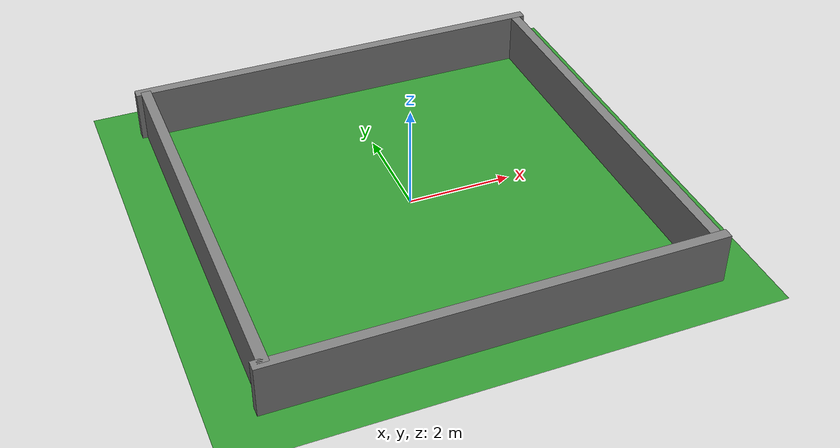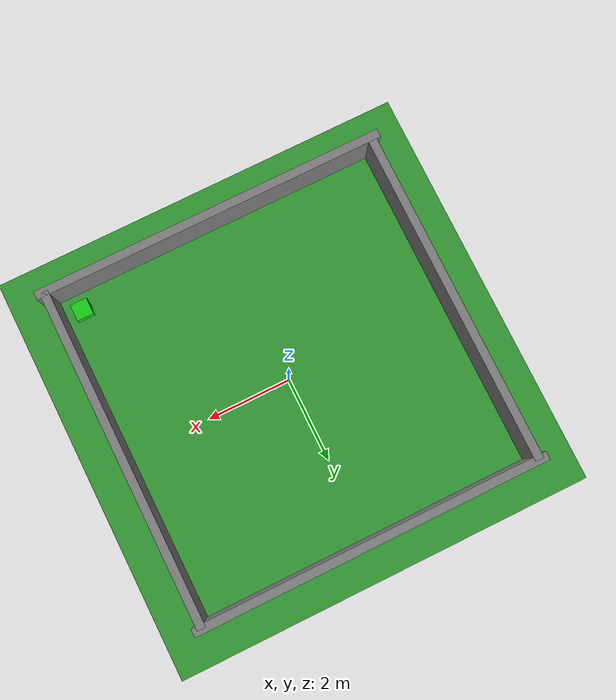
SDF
<?xml version="1.0" ?>
<sdf version="1.8">
  <world name="docking_test_world">

    <!-- 必須プラグイン -->
    <plugin filename="gz-sim-physics-system"
            name="gz::sim::systems::Physics">
    </plugin>
    <plugin filename="gz-sim-user-commands-system"
            name="gz::sim::systems::UserCommands">
    </plugin>
    <plugin filename="gz-sim-scene-broadcaster-system"
            name="gz::sim::systems::SceneBroadcaster">
    </plugin>
    <plugin filename="gz-sim-sensors-system"
            name="gz::sim::systems::Sensors">
      <render_engine>ogre2</render_engine>
    </plugin>

    <!-- 太陽光 -->
    <light type="directional" name="sun">
      <cast_shadows>true</cast_shadows>
      <pose>0 0 10 0 0 0</pose>
      <diffuse>0.8 0.8 0.8 1</diffuse>
      <specular>0.2 0.2 0.2 1</specular>
      <attenuation>
        <range>1000</range>
        <constant>0.9</constant>
        <linear>0.01</linear>
        <quadratic>0.001</quadratic>
      </attenuation>
      <direction>-0.5 0.1 -0.9</direction>
    </light>

    <!-- 地面 -->
    <model name="ground_plane">
      <static>true</static>
      <link name="link">
        <collision name="collision">
          <geometry>
            <plane>
              <normal>0 0 1</normal>
              <size>100 100</size>
            </plane>
          </geometry>
        </collision>
        <visual name="visual">
          <geometry>
            <plane>
              <normal>0 0 1</normal>
              <size>100 100</size>
            </plane>
          </geometry>
          <material>
            <ambient>0.2 0.6 0.2 1</ambient>
            <diffuse>0.2 0.6 0.2 1</diffuse>
            <specular>0.1 0.1 0.1 1</specular>
          </material>
        </visual>
      </link>
    </model>

    <!-- 外壁 (8m x 8m) -->
    <model name="wall_north">
      <pose>0 4 0.5 0 0 0</pose>
      <static>true</static>
      <link name="link">
        <collision name="collision">
          <geometry><box><size>8.4 0.2 1.0</size></box></geometry>
        </collision>
        <visual name="visual">
          <geometry><box><size>8.4 0.2 1.0</size></box></geometry>
          <material>
            <ambient>0.5 0.5 0.5 1</ambient>
            <diffuse>0.5 0.5 0.5 1</diffuse>
          </material>
        </visual>
      </link>
    </model>

    <model name="wall_south">
      <pose>0 -4 0.5 0 0 0</pose>
      <static>true</static>
      <link name="link">
        <collision name="collision">
          <geometry><box><size>8.4 0.2 1.0</size></box></geometry>
        </collision>
        <visual name="visual">
          <geometry><box><size>8.4 0.2 1.0</size></box></geometry>
          <material>
            <ambient>0.5 0.5 0.5 1</ambient>
            <diffuse>0.5 0.5 0.5 1</diffuse>
          </material>
        </visual>
      </link>
    </model>

    <model name="wall_east">
      <pose>4 0 0.5 0 0 0</pose>
      <static>true</static>
      <link name="link">
        <collision name="collision">
          <geometry><box><size>0.2 8.0 1.0</size></box></geometry>
        </collision>
        <visual name="visual">
          <geometry><box><size>0.2 8.0 1.0</size></box></geometry>
          <material>
            <ambient>0.5 0.5 0.5 1</ambient>
            <diffuse>0.5 0.5 0.5 1</diffuse>
          </material>
        </visual>
      </link>
    </model>

    <model name="wall_west">
      <pose>-4 0 0.5 0 0 0</pose>
      <static>true</static>
      <link name="link">
        <collision name="collision">
          <geometry><box><size>0.2 8.0 1.0</size></box></geometry>
        </collision>
        <visual name="visual">
          <geometry><box><size>0.2 8.0 1.0</size></box></geometry>
          <material>
            <ambient>0.5 0.5 0.5 1</ambient>
            <diffuse>0.5 0.5 0.5 1</diffuse>
          </material>
        </visual>
      </link>
    </model>

    <!-- 充電ステーション (南東コーナー壁際) -->
    <model name="charging_station">
      <pose>3.5 -3.5 0.1 0 0 0</pose>
      <static>true</static>
      <link name="link">
        <collision name="collision">
          <geometry><box><size>0.4 0.4 0.2</size></box></geometry>
        </collision>
        <visual name="visual">
          <geometry><box><size>0.4 0.4 0.2</size></box></geometry>
          <material>
            <ambient>0.1 0.8 0.1 1</ambient>
            <diffuse>0.1 0.8 0.1 1</diffuse>
          </material>
        </visual>
        <inertial>
          <mass>5.0</mass>
          <inertia>
            <ixx>0.17</ixx><iyy>0.17</iyy><izz>0.13</izz>
          </inertia>
        </inertial>
      </link>
    </model>

    <!--
      AprilTag 36h11 ID 0 — 充電ステーション西面に設置
      ロボットが西側から接近するため、タグは西を向く (yaw = π)
      位置: 充電ステーション西面の中心 (x = 3.5 - 0.2 = 3.3)
      高さ: ロボットのカメラ高さ (約 0.125m) に合わせる
    -->
    <model name="apriltag_marker">
      <pose>3.28 -3.5 0.125 0 0 3.14159</pose>
      <static>true</static>
      <link name="tag_link">
        <visual name="tag_visual">
          <geometry>
            <box>
              <size>0.001 0.15 0.15</size>
            </box>
          </geometry>
          <material>
            <pbr>
              <metal>
                <albedo_map>model://apriltag_dock/materials/textures/tag36_11_00000.png</albedo_map>
                <roughness>1.0</roughness>
                <metalness>0.0</metalness>
              </metal>
            </pbr>
          </material>
        </visual>
      </link>
    </model>

  </world>
</sdf>
